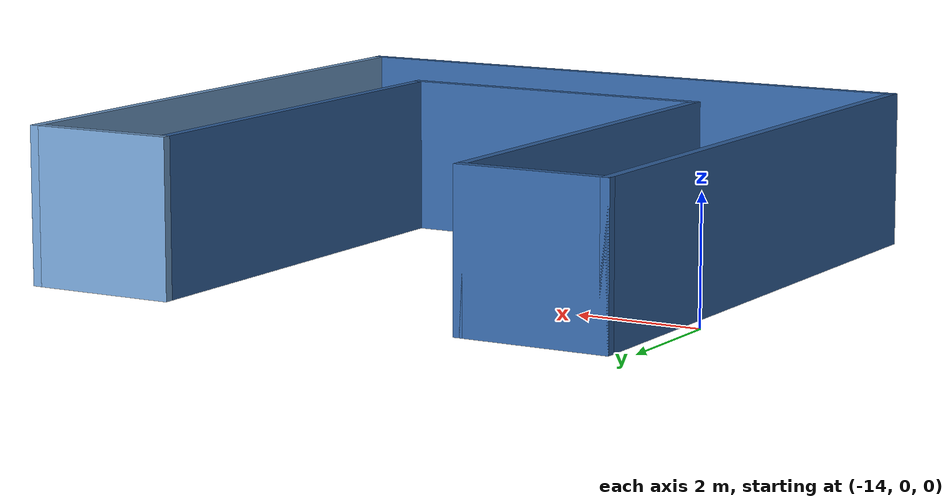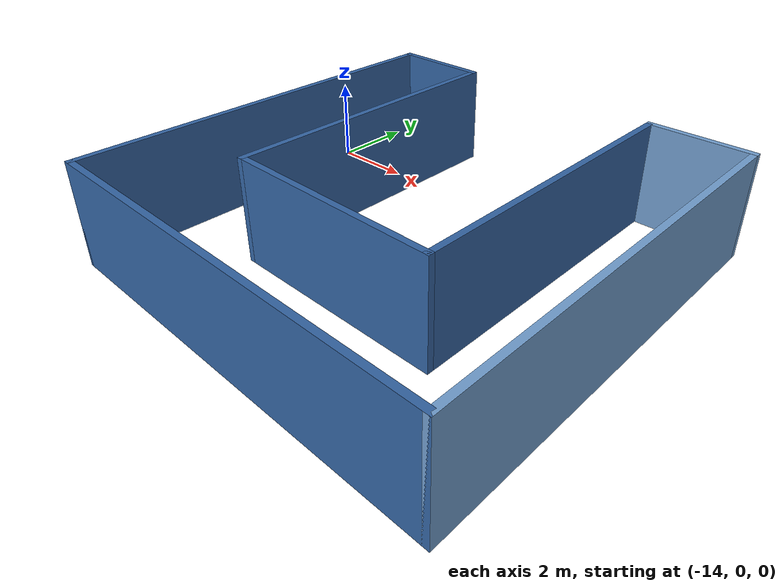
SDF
<?xml version='1.0'?>
<sdf version='1.6'>
  <model name='mybuilding'>
    <pose frame=''>-8.71532 -2.73143 0 0 -0 0</pose>
    <link name='Wall_10'>
      <collision name='Wall_10_Collision'>
        <geometry>
          <box>
            <size>10 0.15 2.5</size>
          </box>
        </geometry>
        <pose frame=''>0 0 1.25 0 -0 0</pose>
      </collision>
      <visual name='Wall_10_Visual'>
        <pose frame=''>0 0 1.25 0 -0 0</pose>
        <geometry>
          <box>
            <size>10 0.15 2.5</size>
          </box>
        </geometry>
        <material>
          <script>
            <uri>file://media/materials/scripts/gazebo.material</uri>
            <name>Gazebo/Grey</name>
          </script>
          <ambient>0.203922 0.396078 0.643137 1</ambient>
        </material>
        <meta>
          <layer>0</layer>
        </meta>
      </visual>
      <pose frame=''>-0 -4.925 0 0 -0 0</pose>
    </link>
    <link name='Wall_11'>
      <collision name='Wall_11_Collision'>
        <geometry>
          <box>
            <size>10 0.15 2.5</size>
          </box>
        </geometry>
        <pose frame=''>0 0 1.25 0 -0 0</pose>
      </collision>
      <visual name='Wall_11_Visual'>
        <pose frame=''>0 0 1.25 0 -0 0</pose>
        <geometry>
          <box>
            <size>10 0.15 2.5</size>
          </box>
        </geometry>
        <material>
          <script>
            <uri>file://media/materials/scripts/gazebo.material</uri>
            <name>Gazebo/Grey</name>
          </script>
          <ambient>0.447059 0.623529 0.811765 1</ambient>
        </material>
        <meta>
          <layer>0</layer>
        </meta>
      </visual>
      <pose frame=''>4.925 0 0 0 -0 1.5708</pose>
    </link>
    <link name='Wall_12'>
      <collision name='Wall_12_Collision'>
        <geometry>
          <box>
            <size>2.5 0.15 2.5</size>
          </box>
        </geometry>
        <pose frame=''>0 0 1.25 0 -0 0</pose>
      </collision>
      <visual name='Wall_12_Visual'>
        <pose frame=''>0 0 1.25 0 -0 0</pose>
        <geometry>
          <box>
            <size>2.5 0.15 2.5</size>
          </box>
        </geometry>
        <material>
          <script>
            <uri>file://media/materials/scripts/gazebo.material</uri>
            <name>Gazebo/Grey</name>
          </script>
          <ambient>0.447059 0.623529 0.811765 1</ambient>
        </material>
        <meta>
          <layer>0</layer>
        </meta>
      </visual>
      <pose frame=''>3.75 4.925 0 0 -0 3.14159</pose>
    </link>
    <link name='Wall_13'>
      <collision name='Wall_13_Collision'>
        <geometry>
          <box>
            <size>7.5 0.15 2.5</size>
          </box>
        </geometry>
        <pose frame=''>0 0 1.25 0 -0 0</pose>
      </collision>
      <visual name='Wall_13_Visual'>
        <pose frame=''>0 0 1.25 0 -0 0</pose>
        <geometry>
          <box>
            <size>7.5 0.15 2.5</size>
          </box>
        </geometry>
        <material>
          <script>
            <uri>file://media/materials/scripts/gazebo.material</uri>
            <name>Gazebo/Grey</name>
          </script>
          <ambient>0.203922 0.396078 0.643137 1</ambient>
        </material>
        <meta>
          <layer>0</layer>
        </meta>
      </visual>
      <pose frame=''>2.575 1.25 0 0 -0 -1.5708</pose>
    </link>
    <link name='Wall_14'>
      <collision name='Wall_14_Collision'>
        <geometry>
          <box>
            <size>5.3 0.15 2.5</size>
          </box>
        </geometry>
        <pose frame=''>0 0 1.25 0 -0 0</pose>
      </collision>
      <visual name='Wall_14_Visual'>
        <pose frame=''>0 0 1.25 0 -0 0</pose>
        <geometry>
          <box>
            <size>5.3 0.15 2.5</size>
          </box>
        </geometry>
        <material>
          <script>
            <uri>file://media/materials/scripts/gazebo.material</uri>
            <name>Gazebo/Grey</name>
          </script>
          <ambient>0.203922 0.396078 0.643137 1</ambient>
        </material>
        <meta>
          <layer>0</layer>
        </meta>
      </visual>
      <pose frame=''>-0 -2.425 0 0 -0 3.14159</pose>
    </link>
    <link name='Wall_6'>
      <collision name='Wall_6_Collision'>
        <geometry>
          <box>
            <size>2.5 0.15 2.5</size>
          </box>
        </geometry>
        <pose frame=''>0 0 1.25 0 -0 0</pose>
      </collision>
      <visual name='Wall_6_Visual'>
        <pose frame=''>0 0 1.25 0 -0 0</pose>
        <geometry>
          <box>
            <size>2.5 0.15 2.5</size>
          </box>
        </geometry>
        <material>
          <script>
            <uri>file://media/materials/scripts/gazebo.material</uri>
            <name>Gazebo/Grey</name>
          </script>
          <ambient>0.203922 0.396078 0.643137 1</ambient>
        </material>
        <meta>
          <layer>0</layer>
        </meta>
      </visual>
      <pose frame=''>-3.75 4.925 0 0 -0 0</pose>
    </link>
    <link name='Wall_7'>
      <collision name='Wall_7_Collision'>
        <geometry>
          <box>
            <size>7.5 0.15 2.5</size>
          </box>
        </geometry>
        <pose frame=''>0 0 1.25 0 -0 0</pose>
      </collision>
      <visual name='Wall_7_Visual'>
        <pose frame=''>0 0 1.25 0 -0 0</pose>
        <geometry>
          <box>
            <size>7.5 0.15 2.5</size>
          </box>
        </geometry>
        <material>
          <script>
            <uri>file://media/materials/scripts/gazebo.material</uri>
            <name>Gazebo/Grey</name>
          </script>
          <ambient>0.203922 0.396078 0.643137 1</ambient>
        </material>
        <meta>
          <layer>0</layer>
        </meta>
      </visual>
      <pose frame=''>-2.575 1.25 0 0 -0 -1.5708</pose>
    </link>
    <link name='Wall_9'>
      <collision name='Wall_9_Collision'>
        <geometry>
          <box>
            <size>10 0.15 2.5</size>
          </box>
        </geometry>
        <pose frame=''>0 0 1.25 0 -0 0</pose>
      </collision>
      <visual name='Wall_9_Visual'>
        <pose frame=''>0 0 1.25 0 -0 0</pose>
        <geometry>
          <box>
            <size>10 0.15 2.5</size>
          </box>
        </geometry>
        <material>
          <script>
            <uri>file://media/materials/scripts/gazebo.material</uri>
            <name>Gazebo/Grey</name>
          </script>
          <ambient>0.203922 0.396078 0.643137 1</ambient>
        </material>
        <meta>
          <layer>0</layer>
        </meta>
      </visual>
      <pose frame=''>-4.925 0 0 0 -0 -1.5708</pose>
    </link>
    <static>1</static>
  </model>
</sdf>
